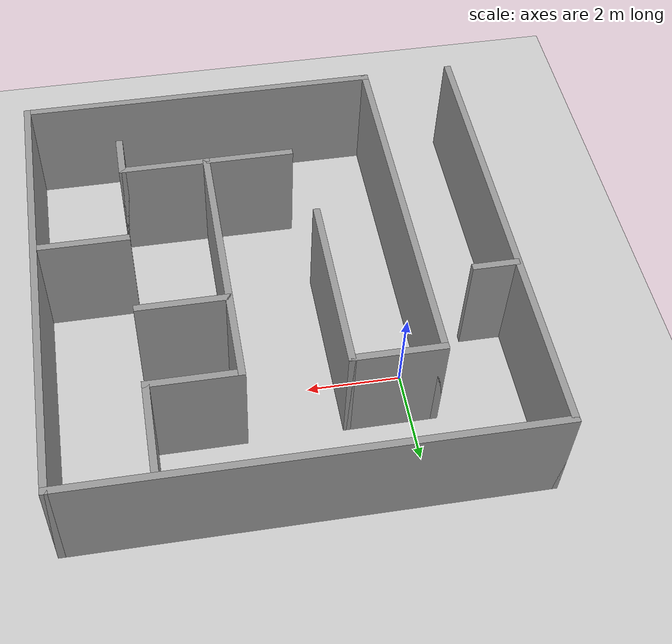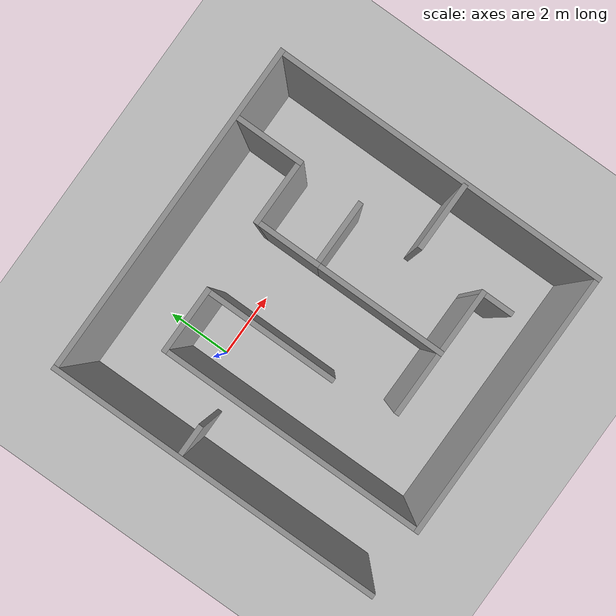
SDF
<sdf version="1.7">
 <world name="default">
  <light name="sun" type="directional">
   <pose>0 0 10 0 -0 0</pose>
   <diffuse>0.8 0.8 0.8 1</diffuse>
   <specular>0.2 0.2 0.2 1</specular>
   <attenuation>
    <range>1000</range>
    <constant>0.9</constant>
    <linear>0.01</linear>
    <quadratic>0.001</quadratic>
   </attenuation>
   <direction>-0.5 0.1 -0.9</direction>
   <spot><inner_angle>0</inner_angle><outer_angle>0</outer_angle><falloff>0</falloff></spot>
  </light>
  <model name="ground_plane">
   <static>1</static>
   <link name="link">
    <collision name="collision">
     <geometry><plane><normal>0 0 1</normal><size>100 100</size></plane></geometry>
     <surface>
      <contact><collide_bitmask>65535</collide_bitmask></contact>
      <friction><ode><mu>100</mu><mu2>50</mu2></ode></friction>
     </surface>
    </collision>
    <visual name="visual">
     <cast_shadows>0</cast_shadows>
     <geometry><plane><normal>0 0 1</normal><size>100 100</size></plane></geometry>
     <material>
      <script><uri>file://media/materials/scripts/gazebo.material</uri><name>Gazebo/Grey</name></script>
     </material>
    </visual>
   </link>
  </model>
  <gravity>0 0 -9.8</gravity>
  <magnetic_field>6e-06 2.3e-05 -4.2e-05</magnetic_field>
  <atmosphere type="adiabatic"/>
  <physics type="ode">
   <max_step_size>0.001</max_step_size>
   <real_time_factor>1</real_time_factor>
   <real_time_update_rate>1000</real_time_update_rate>
  </physics>
  <scene><ambient>0.4 0.4 0.4 1</ambient><background>0.7 0.7 0.7 1</background><shadows>1</shadows></scene>
  <spherical_coordinates>
   <surface_model>EARTH_WGS84</surface_model>
   <latitude_deg>0</latitude_deg>
   <longitude_deg>0</longitude_deg>
   <elevation>0</elevation>
   <heading_deg>0</heading_deg>
  </spherical_coordinates>
  <model name="labirent_v3">
   <pose>2.44331 -1.89912 0 0 -0 0</pose>
   <link name="Wall_0">
    <collision name="Wall_0_Collision">
     <geometry><box><size>10 0.15 2.5</size></box></geometry>
     <pose>0 0 1.25 0 -0 0</pose>
    </collision>
    <visual name="Wall_0_Visual">
     <pose>0 0 1.25 0 -0 0</pose>
     <geometry><box><size>10 0.15 2.5</size></box></geometry>
     <material>
      <script><uri>file://media/materials/scripts/gazebo.material</uri><name>Gazebo/Grey</name></script>
      <ambient>1 1 1 1</ambient>
     </material>
     <meta><layer>0</layer></meta>
    </visual>
    <pose>-4.925 0 0 0 -0 -1.5708</pose>
   </link>
   <link name="Wall_10">
    <collision name="Wall_10_Collision">
     <geometry><box><size>2 0.15 2.5</size></box></geometry>
     <pose>0 0 1.25 0 -0 0</pose>
    </collision>
    <visual name="Wall_10_Visual">
     <pose>0 0 1.25 0 -0 0</pose>
     <geometry><box><size>2 0.15 2.5</size></box></geometry>
     <material>
      <script><uri>file://media/materials/scripts/gazebo.material</uri><name>Gazebo/Grey</name></script>
      <ambient>1 1 1 1</ambient>
     </material>
     <meta><layer>0</layer></meta>
    </visual>
    <pose>2.925 3.85 0 0 -0 1.5708</pose>
   </link>
   <link name="Wall_12">
    <collision name="Wall_12_Collision">
     <geometry><box><size>2 0.15 2.5</size></box></geometry>
     <pose>0 0 1.25 0 -0 0</pose>
    </collision>
    <visual name="Wall_12_Visual">
     <pose>0 0 1.25 0 -0 0</pose>
     <geometry><box><size>2 0.15 2.5</size></box></geometry>
     <material>
      <script><uri>file://media/materials/scripts/gazebo.material</uri><name>Gazebo/Grey</name></script>
      <ambient>1 1 1 1</ambient>
     </material>
     <meta><layer>0</layer></meta>
    </visual>
    <pose>-2 2.925 0 0 -0 0</pose>
   </link>
   <link name="Wall_13">
    <collision name="Wall_13_Collision">
     <geometry><box><size>4 0.15 2.5</size></box></geometry>
     <pose>0 0 1.25 0 -0 0</pose>
    </collision>
    <visual name="Wall_13_Visual">
     <pose>0 0 1.25 0 -0 0</pose>
     <geometry><box><size>4 0.15 2.5</size></box></geometry>
     <material>
      <script><uri>file://media/materials/scripts/gazebo.material</uri><name>Gazebo/Grey</name></script>
      <ambient>1 1 1 1</ambient>
     </material>
     <meta><layer>0</layer></meta>
    </visual>
    <pose>-1.075 1 0 0 -0 -1.5708</pose>
   </link>
   <link name="Wall_15">
    <collision name="Wall_15_Collision">
     <geometry><box><size>2 0.15 2.5</size></box></geometry>
     <pose>0 0 1.25 0 -0 0</pose>
    </collision>
    <visual name="Wall_15_Visual">
     <pose>0 0 1.25 0 -0 0</pose>
     <geometry><box><size>2 0.15 2.5</size></box></geometry>
     <material>
      <script><uri>file://media/materials/scripts/gazebo.material</uri><name>Gazebo/Grey</name></script>
      <ambient>1 1 1 1</ambient>
     </material>
     <meta><layer>0</layer></meta>
    </visual>
    <pose>2 2.925 0 0 -0 3.14159</pose>
   </link>
   <link name="Wall_17">
    <collision name="Wall_17_Collision">
     <geometry><box><size>2 0.15 2.5</size></box></geometry>
     <pose>0 0 1.25 0 -0 0</pose>
    </collision>
    <visual name="Wall_17_Visual">
     <pose>0 0 1.25 0 -0 0</pose>
     <geometry><box><size>2 0.15 2.5</size></box></geometry>
     <material>
      <script><uri>file://media/materials/scripts/gazebo.material</uri><name>Gazebo/Grey</name></script>
      <ambient>1 1 1 1</ambient>
     </material>
     <meta><layer>0</layer></meta>
    </visual>
    <pose>1.075 2 0 0 -0 -1.5708</pose>
   </link>
   <link name="Wall_18">
    <collision name="Wall_18_Collision">
     <geometry><box><size>2 0.15 2.5</size></box></geometry>
     <pose>0 0 1.25 0 -0 0</pose>
    </collision>
    <visual name="Wall_18_Visual">
     <pose>0 0 1.25 0 -0 0</pose>
     <geometry><box><size>2 0.15 2.5</size></box></geometry>
     <material>
      <script><uri>file://media/materials/scripts/gazebo.material</uri><name>Gazebo/Grey</name></script>
      <ambient>1 1 1 1</ambient>
     </material>
     <meta><layer>0</layer></meta>
    </visual>
    <pose>2 1.075 0 0 -0 0</pose>
   </link>
   <link name="Wall_2">
    <collision name="Wall_2_Collision">
     <geometry><box><size>10 0.15 2.5</size></box></geometry>
     <pose>0 0 1.25 0 -0 0</pose>
    </collision>
    <visual name="Wall_2_Visual">
     <pose>0 0 1.25 0 -0 0</pose>
     <geometry><box><size>10 0.15 2.5</size></box></geometry>
     <material>
      <script><uri>file://media/materials/scripts/gazebo.material</uri><name>Gazebo/Grey</name></script>
      <ambient>1 1 1 1</ambient>
     </material>
     <meta><layer>0</layer></meta>
    </visual>
    <pose>0 4.925 0 0 -0 0</pose>
   </link>
   <link name="Wall_20">
    <collision name="Wall_20_Collision">
     <geometry><box><size>4 0.15 2.5</size></box></geometry>
     <pose>0 0 1.25 0 -0 0</pose>
    </collision>
    <visual name="Wall_20_Visual">
     <pose>0 0 1.25 0 -0 0</pose>
     <geometry><box><size>4 0.15 2.5</size></box></geometry>
     <material>
      <script><uri>file://media/materials/scripts/gazebo.material</uri><name>Gazebo/Grey</name></script>
      <ambient>1 1 1 1</ambient>
     </material>
     <meta><layer>0</layer></meta>
    </visual>
    <pose>1.075 -0.85 0 0 -0 -1.5708</pose>
   </link>
   <link name="Wall_21">
    <collision name="Wall_21_Collision">
     <geometry><box><size>2 0.15 2.5</size></box></geometry>
     <pose>0 0 1.25 0 -0 0</pose>
    </collision>
    <visual name="Wall_21_Visual">
     <pose>0 0 1.25 0 -0 0</pose>
     <geometry><box><size>2 0.15 2.5</size></box></geometry>
     <material>
      <script><uri>file://media/materials/scripts/gazebo.material</uri><name>Gazebo/Grey</name></script>
      <ambient>1 1 1 1</ambient>
     </material>
     <meta><layer>0</layer></meta>
    </visual>
    <pose>2 -2.775 0 0 -0 0</pose>
   </link>
   <link name="Wall_23">
    <collision name="Wall_23_Collision">
     <geometry><box><size>2 0.15 2.5</size></box></geometry>
     <pose>0 0 1.25 0 -0 0</pose>
    </collision>
    <visual name="Wall_23_Visual">
     <pose>0 0 1.25 0 -0 0</pose>
     <geometry><box><size>2 0.15 2.5</size></box></geometry>
     <material>
      <script><uri>file://media/materials/scripts/gazebo.material</uri><name>Gazebo/Grey</name></script>
      <ambient>1 1 1 1</ambient>
     </material>
     <meta><layer>0</layer></meta>
    </visual>
    <pose>0.15 -2.775 0 0 -0 3.14159</pose>
   </link>
   <link name="Wall_25">
    <collision name="Wall_25_Collision">
     <geometry><box><size>2 0.15 2.5</size></box></geometry>
     <pose>0 0 1.25 0 -0 0</pose>
    </collision>
    <visual name="Wall_25_Visual">
     <pose>0 0 1.25 0 -0 0</pose>
     <geometry><box><size>2 0.15 2.5</size></box></geometry>
     <material>
      <script><uri>file://media/materials/scripts/gazebo.material</uri><name>Gazebo/Grey</name></script>
      <ambient>1 1 1 1</ambient>
     </material>
     <meta><layer>0</layer></meta>
    </visual>
    <pose>3.91185 -0.816516 0 0 -0 3.14159</pose>
   </link>
   <link name="Wall_28">
    <collision name="Wall_28_Collision">
     <geometry><box><size>1 0.15 2.5</size></box></geometry>
     <pose>0 0 1.25 0 -0 0</pose>
    </collision>
    <visual name="Wall_28_Visual">
     <pose>0 0 1.25 0 -0 0</pose>
     <geometry><box><size>1 0.15 2.5</size></box></geometry>
     <material>
      <script><uri>file://media/materials/scripts/gazebo.material</uri><name>Gazebo/Grey</name></script>
      <ambient>1 1 1 1</ambient>
     </material>
     <meta><layer>0</layer></meta>
    </visual>
    <pose>-4.44722 1.0721 0 0 -0 0</pose>
   </link>
   <link name="Wall_3">
    <collision name="Wall_3_Collision">
     <geometry><box><size>10 0.15 2.5</size></box></geometry>
     <pose>0 0 1.25 0 -0 0</pose>
    </collision>
    <visual name="Wall_3_Visual">
     <pose>0 0 1.25 0 -0 0</pose>
     <geometry><box><size>10 0.15 2.5</size></box></geometry>
     <material>
      <script><uri>file://media/materials/scripts/gazebo.material</uri><name>Gazebo/Grey</name></script>
      <ambient>1 1 1 1</ambient>
     </material>
     <meta><layer>0</layer></meta>
    </visual>
    <pose>4.925 0 0 0 -0 -1.5708</pose>
   </link>
   <link name="Wall_30">
    <collision name="Wall_30_Collision">
     <geometry><box><size>1 0.15 2.5</size></box></geometry>
     <pose>0 0 1.25 0 -0 0</pose>
    </collision>
    <visual name="Wall_30_Visual">
     <pose>0 0 1.25 0 -0 0</pose>
     <geometry><box><size>1 0.15 2.5</size></box></geometry>
     <material>
      <script><uri>file://media/materials/scripts/gazebo.material</uri><name>Gazebo/Grey</name></script>
      <ambient>1 1 1 1</ambient>
     </material>
     <meta><layer>0</layer></meta>
    </visual>
    <pose>2.925 -3.2 0 0 -0 -1.5708</pose>
   </link>
   <link name="Wall_5">
    <collision name="Wall_5_Collision">
     <geometry><box><size>8 0.15 2.5</size></box></geometry>
     <pose>0 0 1.25 0 -0 0</pose>
    </collision>
    <visual name="Wall_5_Visual">
     <pose>0 0 1.25 0 -0 0</pose>
     <geometry><box><size>8 0.15 2.5</size></box></geometry>
     <material>
      <script><uri>file://media/materials/scripts/gazebo.material</uri><name>Gazebo/Grey</name></script>
      <ambient>1 1 1 1</ambient>
     </material>
     <meta><layer>0</layer></meta>
    </visual>
    <pose>1 -4.925 0 0 -0 3.14159</pose>
   </link>
   <link name="Wall_7">
    <collision name="Wall_7_Collision">
     <geometry><box><size>8 0.15 2.5</size></box></geometry>
     <pose>0 0 1.25 0 -0 0</pose>
    </collision>
    <visual name="Wall_7_Visual">
     <pose>0 0 1.25 0 -0 0</pose>
     <geometry><box><size>8 0.15 2.5</size></box></geometry>
     <material>
      <script><uri>file://media/materials/scripts/gazebo.material</uri><name>Gazebo/Grey</name></script>
      <ambient>1 1 1 1</ambient>
     </material>
     <meta><layer>0</layer></meta>
    </visual>
    <pose>-2.925 -1 0 0 -0 1.5708</pose>
   </link>
   <static>1</static>
  </model>
 </world>
</sdf>
